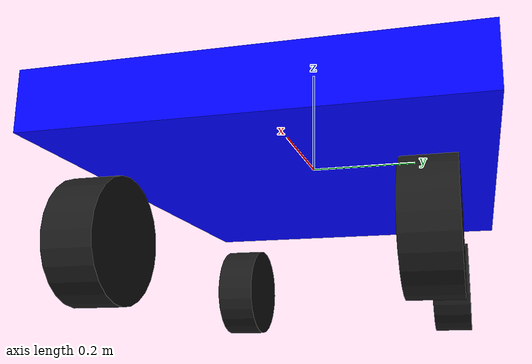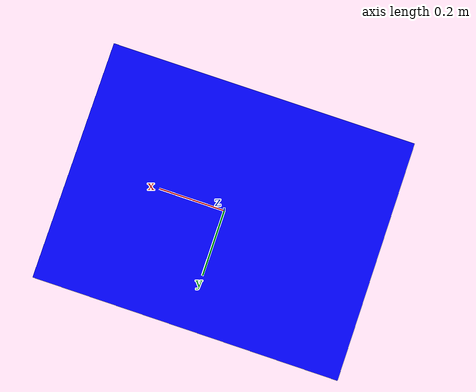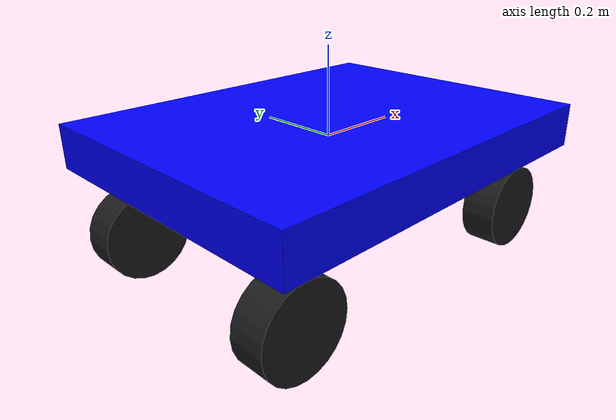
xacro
<?xml version="1.0"?>

<robot name="hiwonder" xmlns:xacro="http://ros.org/wiki/xacro">

  <gazebo>

    <plugin
        filename="gz-sim-diff-drive-system"
        name="gz::sim::systems::DiffDrive">
        <left_joint>front_left_wheel_joint</left_joint>
        <right_joint>front_right_wheel_joint</right_joint>
        <wheel_separation>0.7</wheel_separation>
        <wheel_radius>0.1</wheel_radius>
        <odom_publish_frequency>1</odom_publish_frequency>
        <topic>cmd_vel</topic>
    </plugin>

  </gazebo>

  <link name="base_link">
    <visual>
      <geometry>
        <box size="0.9 0.7 0.1"/>
      </geometry>
      <material name="blue">
        <color rgba="0.0 0.0 1.0 1.0"/>
      </material>
    </visual>

    <collision>
      <geometry>
        <box size="0.9 0.7 0.1"/>
      </geometry>
    </collision>

    <inertial>
      <mass value="5.0"/>
      <origin xyz="0 0 0" rpy="0 0 0"/>
      <inertia ixx="0.5" ixy="0.0" ixz="0.0"
               iyy="0.5" iyz="0.0"
               izz="0.5"/>
    </inertial>
  </link>

   <!-- Wheel Macro -->
  <xacro:macro name="wheel" params="name x y">
    <link name="${name}">
      <visual>
        <geometry>
          <cylinder length="0.08" radius="0.1"/>
        </geometry>
        <material name="black">
          <color rgba="0.1 0.1 0.1 1.0"/>
        </material>
      </visual>
      <collision>
        <geometry>
          <cylinder length="0.08" radius="0.1"/>
        </geometry>
      </collision>
      <inertial>
        <mass value="0.2"/>
        <origin xyz="0 0 0" rpy="0 0 0"/>
        <inertia ixx="0.01" ixy="0" ixz="0"
                 iyy="0.01" iyz="0"
                 izz="0.01"/>
      </inertial>
    </link>

    <joint name="${name}_joint" type="continuous">
      <origin xyz="${x} ${y} -0.2" rpy="1.5708 0 0"/>
      <parent link="base_link"/>
      <child link="${name}"/>
      <axis xyz="0 0 1"/>
    </joint>
  </xacro:macro>

  <xacro:wheel name="front_left_wheel"  x="0.35" y="0.25"/>
  <xacro:wheel name="front_right_wheel" x="0.35" y="-0.25"/>
  <xacro:wheel name="rear_left_wheel"   x="-0.35" y="0.25"/>
  <xacro:wheel name="rear_right_wheel"  x="-0.35" y="-0.25"/>

</robot>
